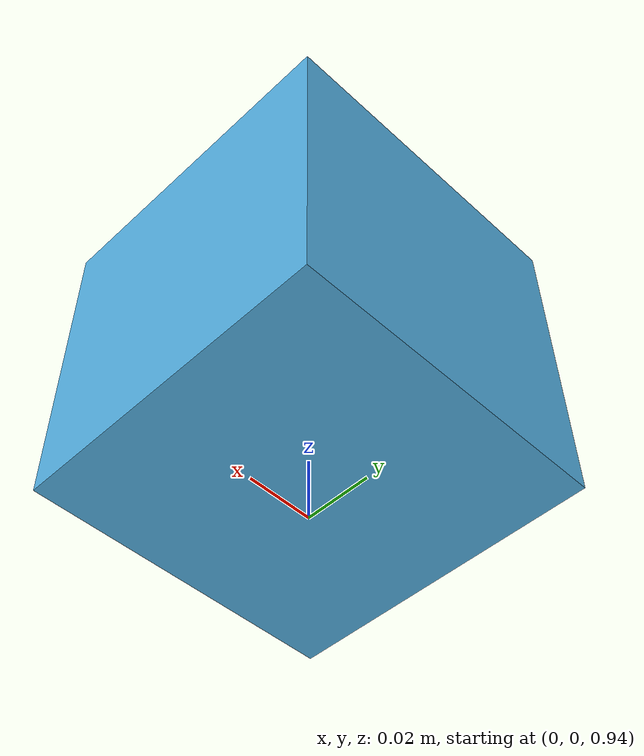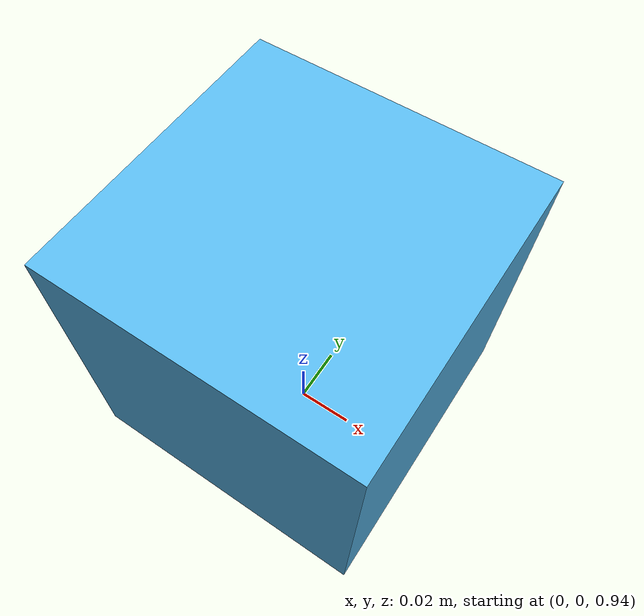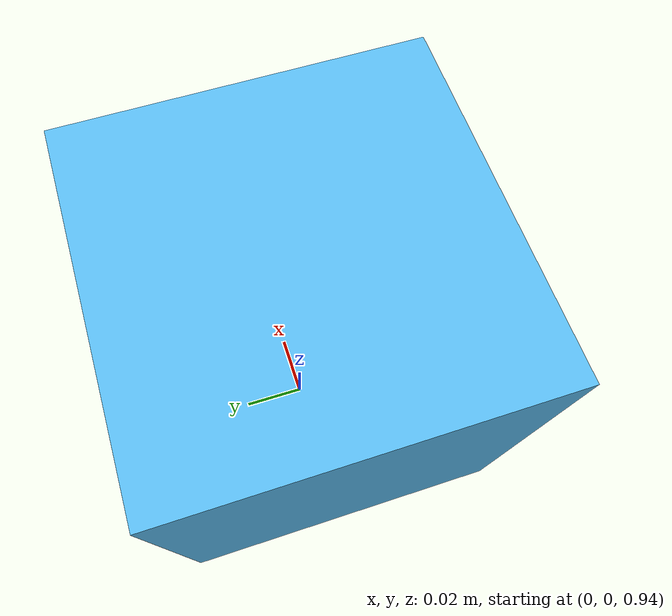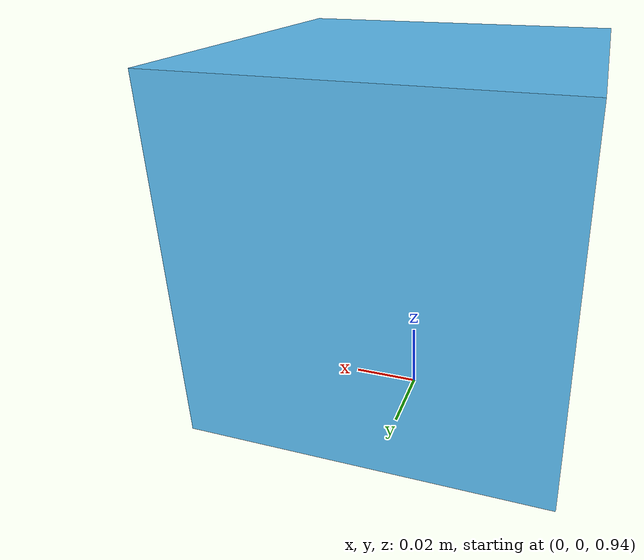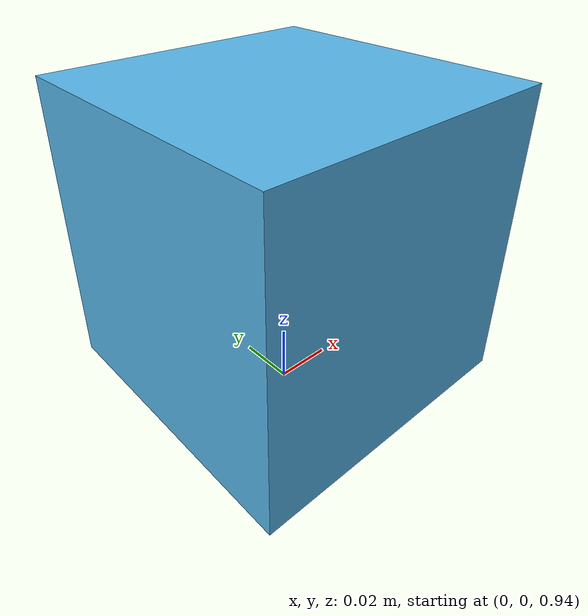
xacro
<?xml version="1.0"?>
<robot name="box_bot">

  <link name="map">
  </link>

  <link name="camera_link">
    <visual>
      <geometry>
        <box size="0.1 0.1 0.1"/>
      </geometry>
    </visual>
  </link>

  <joint name="map_joint" type="fixed">
    <origin rpy="0 0 0" xyz="0 0 1" />
    <parent link="map" />
    <child link="camera_link" />
  </joint>

</robot>
